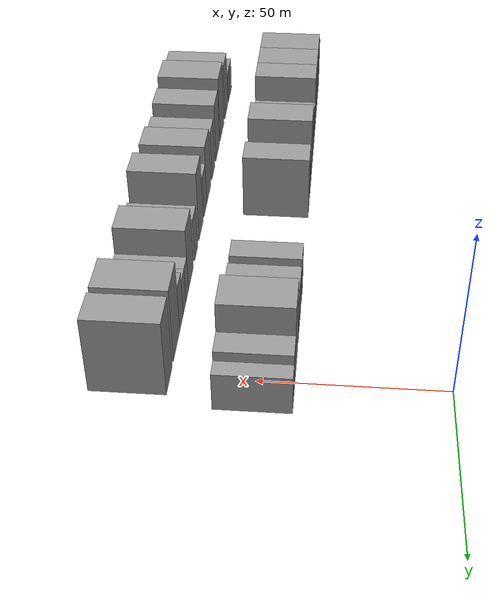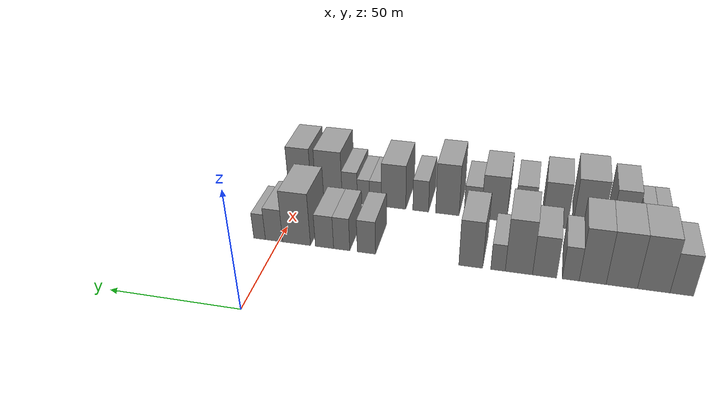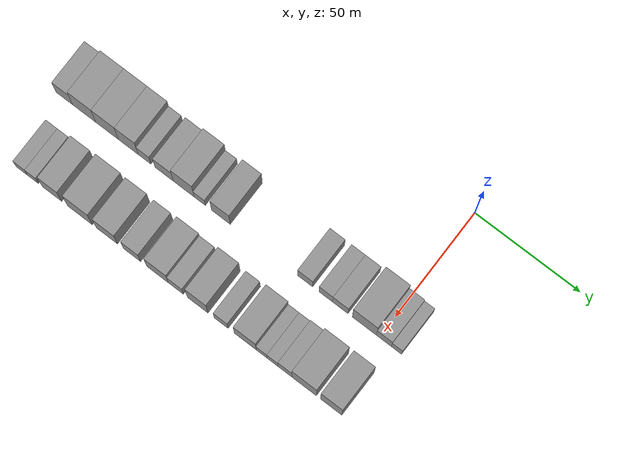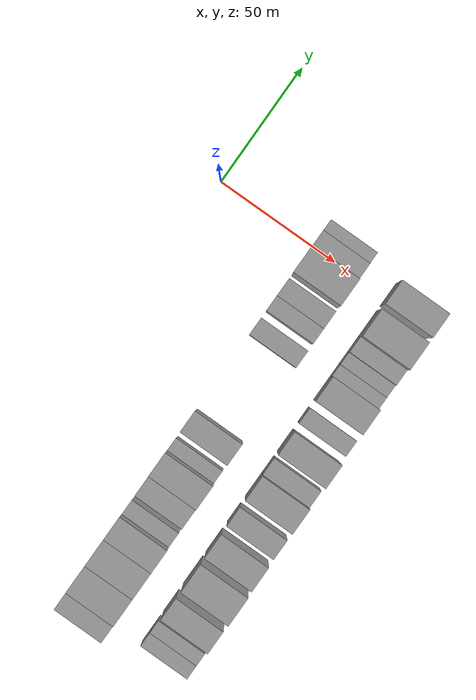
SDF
<sdf version="1.6">
 <world name="default">
  <model name="building_15">
   <static>1</static>
   <pose>50.0000 -151.5765 0 0.000000 0.000000 0.000000</pose>
   <link name="link">
    <pose>0 0 9.00 0 0 0</pose>
    <collision name="collision"><geometry><box><size>20.0000 8.1117 18.0000</size></box></geometry></collision>
    <visual name="visual">
     <cast_shadows>0</cast_shadows>
     <geometry><box><size>20.0000 8.1117 18.0000</size></box></geometry>
     <material>
      <script>
       <uri>model://grey_wall/materials/scripts</uri>
       <uri>model://grey_wall/materials/textures</uri>
       <name>vrc/grey_wall</name>
      </script>
     </material>
    </visual>
   </link>
  </model>
  <model name="building_16">
   <static>1</static>
   <pose>50.0000 -141.8752 0 0.000000 0.000000 0.000000</pose>
   <link name="link">
    <pose>0 0 12.00 0 0 0</pose>
    <collision name="collision"><geometry><box><size>20.0000 11.2909 24.0000</size></box></geometry></collision>
    <visual name="visual">
     <cast_shadows>0</cast_shadows>
     <geometry><box><size>20.0000 11.2909 24.0000</size></box></geometry>
     <material>
      <script>
       <uri>model://grey_wall/materials/scripts</uri>
       <uri>model://grey_wall/materials/textures</uri>
       <name>vrc/grey_wall</name>
      </script>
     </material>
    </visual>
   </link>
  </model>
  <model name="building_17">
   <static>1</static>
   <pose>50.0000 -130.7144 0 0.000000 0.000000 0.000000</pose>
   <link name="link">
    <pose>0 0 12.00 0 0 0</pose>
    <collision name="collision"><geometry><box><size>20.0000 11.0307 24.0000</size></box></geometry></collision>
    <visual name="visual">
     <cast_shadows>0</cast_shadows>
     <geometry><box><size>20.0000 11.0307 24.0000</size></box></geometry>
     <material>
      <script>
       <uri>model://grey_wall/materials/scripts</uri>
       <uri>model://grey_wall/materials/textures</uri>
       <name>vrc/grey_wall</name>
      </script>
     </material>
    </visual>
   </link>
  </model>
  <model name="building_18">
   <static>1</static>
   <pose>50.0000 -120.3880 0 0.000000 0.000000 0.000000</pose>
   <link name="link">
    <pose>0 0 12.00 0 0 0</pose>
    <collision name="collision"><geometry><box><size>20.0000 9.6219 24.0000</size></box></geometry></collision>
    <visual name="visual">
     <cast_shadows>0</cast_shadows>
     <geometry><box><size>20.0000 9.6219 24.0000</size></box></geometry>
     <material>
      <script>
       <uri>model://grey_wall/materials/scripts</uri>
       <uri>model://grey_wall/materials/textures</uri>
       <name>vrc/grey_wall</name>
      </script>
     </material>
    </visual>
   </link>
  </model>
  <model name="building_19">
   <static>1</static>
   <pose>50.0000 -112.5181 0 0.000000 0.000000 0.000000</pose>
   <link name="link">
    <pose>0 0 7.50 0 0 0</pose>
    <collision name="collision"><geometry><box><size>20.0000 6.1178 15.0000</size></box></geometry></collision>
    <visual name="visual">
     <cast_shadows>0</cast_shadows>
     <geometry><box><size>20.0000 6.1178 15.0000</size></box></geometry>
     <material>
      <script>
       <uri>model://grey_wall/materials/scripts</uri>
       <uri>model://grey_wall/materials/textures</uri>
       <name>vrc/grey_wall</name>
      </script>
     </material>
    </visual>
   </link>
  </model>
  <model name="building_20">
   <static>1</static>
   <pose>50.0000 -103.0494 0 0.000000 0.000000 0.000000</pose>
   <link name="link">
    <pose>0 0 9.00 0 0 0</pose>
    <collision name="collision"><geometry><box><size>20.0000 8.8197 18.0000</size></box></geometry></collision>
    <visual name="visual">
     <cast_shadows>0</cast_shadows>
     <geometry><box><size>20.0000 8.8197 18.0000</size></box></geometry>
     <material>
      <script>
       <uri>model://grey_wall/materials/scripts</uri>
       <uri>model://grey_wall/materials/textures</uri>
       <name>vrc/grey_wall</name>
      </script>
     </material>
    </visual>
   </link>
  </model>
  <model name="building_21">
   <static>1</static>
   <pose>50.0000 -93.6185 0 0.000000 0.000000 0.000000</pose>
   <link name="link">
    <pose>0 0 12.00 0 0 0</pose>
    <collision name="collision"><geometry><box><size>20.0000 10.0421 24.0000</size></box></geometry></collision>
    <visual name="visual">
     <cast_shadows>0</cast_shadows>
     <geometry><box><size>20.0000 10.0421 24.0000</size></box></geometry>
     <material>
      <script>
       <uri>model://grey_wall/materials/scripts</uri>
       <uri>model://grey_wall/materials/textures</uri>
       <name>vrc/grey_wall</name>
      </script>
     </material>
    </visual>
   </link>
  </model>
  <model name="building_22">
   <static>1</static>
   <pose>50.0000 -85.8899 0 0.000000 0.000000 0.000000</pose>
   <link name="link">
    <pose>0 0 6.00 0 0 0</pose>
    <collision name="collision"><geometry><box><size>20.0000 5.4150 12.0000</size></box></geometry></collision>
    <visual name="visual">
     <cast_shadows>0</cast_shadows>
     <geometry><box><size>20.0000 5.4150 12.0000</size></box></geometry>
     <material>
      <script>
       <uri>model://grey_wall/materials/scripts</uri>
       <uri>model://grey_wall/materials/textures</uri>
       <name>vrc/grey_wall</name>
      </script>
     </material>
    </visual>
   </link>
  </model>
  <model name="building_23">
   <static>1</static>
   <pose>50.0000 -75.6865 0 0.000000 0.000000 0.000000</pose>
   <link name="link">
    <pose>0 0 10.50 0 0 0</pose>
    <collision name="collision"><geometry><box><size>20.0000 8.9918 21.0000</size></box></geometry></collision>
    <visual name="visual">
     <cast_shadows>0</cast_shadows>
     <geometry><box><size>20.0000 8.9918 21.0000</size></box></geometry>
     <material>
      <script>
       <uri>model://grey_wall/materials/scripts</uri>
       <uri>model://grey_wall/materials/textures</uri>
       <name>vrc/grey_wall</name>
      </script>
     </material>
    </visual>
   </link>
  </model>
  <model name="building_24">
   <static>1</static>
   <pose>50.0000 -35.3655 0 0.000000 0.000000 0.000000</pose>
   <link name="link">
    <pose>0 0 7.50 0 0 0</pose>
    <collision name="collision"><geometry><box><size>20.0000 7.2167 15.0000</size></box></geometry></collision>
    <visual name="visual">
     <cast_shadows>0</cast_shadows>
     <geometry><box><size>20.0000 7.2167 15.0000</size></box></geometry>
     <material>
      <script>
       <uri>model://grey_wall/materials/scripts</uri>
       <uri>model://grey_wall/materials/textures</uri>
       <name>vrc/grey_wall</name>
      </script>
     </material>
    </visual>
   </link>
  </model>
  <model name="building_25">
   <static>1</static>
   <pose>50.0000 -25.5118 0 0.000000 0.000000 0.000000</pose>
   <link name="link">
    <pose>0 0 7.50 0 0 0</pose>
    <collision name="collision"><geometry><box><size>20.0000 6.4908 15.0000</size></box></geometry></collision>
    <visual name="visual">
     <cast_shadows>0</cast_shadows>
     <geometry><box><size>20.0000 6.4908 15.0000</size></box></geometry>
     <material>
      <script>
       <uri>model://grey_wall/materials/scripts</uri>
       <uri>model://grey_wall/materials/textures</uri>
       <name>vrc/grey_wall</name>
      </script>
     </material>
    </visual>
   </link>
  </model>
  <model name="building_26">
   <static>1</static>
   <pose>50.0000 -18.5920 0 0.000000 0.000000 0.000000</pose>
   <link name="link">
    <pose>0 0 7.50 0 0 0</pose>
    <collision name="collision"><geometry><box><size>20.0000 7.3487 15.0000</size></box></geometry></collision>
    <visual name="visual">
     <cast_shadows>0</cast_shadows>
     <geometry><box><size>20.0000 7.3487 15.0000</size></box></geometry>
     <material>
      <script>
       <uri>model://grey_wall/materials/scripts</uri>
       <uri>model://grey_wall/materials/textures</uri>
       <name>vrc/grey_wall</name>
      </script>
     </material>
    </visual>
   </link>
  </model>
  <model name="building_27">
   <static>1</static>
   <pose>50.0000 -7.2226 0 0.000000 0.000000 0.000000</pose>
   <link name="link">
    <pose>0 0 12.00 0 0 0</pose>
    <collision name="collision"><geometry><box><size>20.0000 11.3902 24.0000</size></box></geometry></collision>
    <visual name="visual">
     <cast_shadows>0</cast_shadows>
     <geometry><box><size>20.0000 11.3902 24.0000</size></box></geometry>
     <material>
      <script>
       <uri>model://grey_wall/materials/scripts</uri>
       <uri>model://grey_wall/materials/textures</uri>
       <name>vrc/grey_wall</name>
      </script>
     </material>
    </visual>
   </link>
  </model>
  <model name="building_28">
   <static>1</static>
   <pose>50.0000 2.0500 0 0.000000 0.000000 0.000000</pose>
   <link name="link">
    <pose>0 0 7.50 0 0 0</pose>
    <collision name="collision"><geometry><box><size>20.0000 7.1551 15.0000</size></box></geometry></collision>
    <visual name="visual">
     <cast_shadows>0</cast_shadows>
     <geometry><box><size>20.0000 7.1551 15.0000</size></box></geometry>
     <material>
      <script>
       <uri>model://grey_wall/materials/scripts</uri>
       <uri>model://grey_wall/materials/textures</uri>
       <name>vrc/grey_wall</name>
      </script>
     </material>
    </visual>
   </link>
  </model>
  <model name="building_29">
   <static>1</static>
   <pose>50.0000 8.0518 0 0.000000 0.000000 0.000000</pose>
   <link name="link">
    <pose>0 0 6.00 0 0 0</pose>
    <collision name="collision"><geometry><box><size>20.0000 4.8486 12.0000</size></box></geometry></collision>
    <visual name="visual">
     <cast_shadows>0</cast_shadows>
     <geometry><box><size>20.0000 4.8486 12.0000</size></box></geometry>
     <material>
      <script>
       <uri>model://grey_wall/materials/scripts</uri>
       <uri>model://grey_wall/materials/textures</uri>
       <name>vrc/grey_wall</name>
      </script>
     </material>
    </visual>
   </link>
  </model>
  <model name="building_77">
   <static>1</static>
   <pose>82.0000 -146.9586 0 0.000000 0.000000 0.000000</pose>
   <link name="link">
    <pose>0 0 6.00 0 0 0</pose>
    <collision name="collision"><geometry><box><size>20.0000 5.6003 12.0000</size></box></geometry></collision>
    <visual name="visual">
     <cast_shadows>0</cast_shadows>
     <geometry><box><size>20.0000 5.6003 12.0000</size></box></geometry>
     <material>
      <script>
       <uri>model://grey_wall/materials/scripts</uri>
       <uri>model://grey_wall/materials/textures</uri>
       <name>vrc/grey_wall</name>
      </script>
     </material>
    </visual>
   </link>
  </model>
  <model name="building_78">
   <static>1</static>
   <pose>82.0000 -141.5234 0 0.000000 0.000000 0.000000</pose>
   <link name="link">
    <pose>0 0 6.00 0 0 0</pose>
    <collision name="collision"><geometry><box><size>20.0000 5.2701 12.0000</size></box></geometry></collision>
    <visual name="visual">
     <cast_shadows>0</cast_shadows>
     <geometry><box><size>20.0000 5.2701 12.0000</size></box></geometry>
     <material>
      <script>
       <uri>model://grey_wall/materials/scripts</uri>
       <uri>model://grey_wall/materials/textures</uri>
       <name>vrc/grey_wall</name>
      </script>
     </material>
    </visual>
   </link>
  </model>
  <model name="building_79">
   <static>1</static>
   <pose>82.0000 -132.2449 0 0.000000 0.000000 0.000000</pose>
   <link name="link">
    <pose>0 0 10.50 0 0 0</pose>
    <collision name="collision"><geometry><box><size>20.0000 9.2868 21.0000</size></box></geometry></collision>
    <visual name="visual">
     <cast_shadows>0</cast_shadows>
     <geometry><box><size>20.0000 9.2868 21.0000</size></box></geometry>
     <material>
      <script>
       <uri>model://grey_wall/materials/scripts</uri>
       <uri>model://grey_wall/materials/textures</uri>
       <name>vrc/grey_wall</name>
      </script>
     </material>
    </visual>
   </link>
  </model>
  <model name="building_80">
   <static>1</static>
   <pose>82.0000 -118.6875 0 0.000000 0.000000 0.000000</pose>
   <link name="link">
    <pose>0 0 12.00 0 0 0</pose>
    <collision name="collision"><geometry><box><size>20.0000 11.8279 24.0000</size></box></geometry></collision>
    <visual name="visual">
     <cast_shadows>0</cast_shadows>
     <geometry><box><size>20.0000 11.8279 24.0000</size></box></geometry>
     <material>
      <script>
       <uri>model://grey_wall/materials/scripts</uri>
       <uri>model://grey_wall/materials/textures</uri>
       <name>vrc/grey_wall</name>
      </script>
     </material>
    </visual>
   </link>
  </model>
  <model name="building_81">
   <static>1</static>
   <pose>82.0000 -105.6995 0 0.000000 0.000000 0.000000</pose>
   <link name="link">
    <pose>0 0 10.50 0 0 0</pose>
    <collision name="collision"><geometry><box><size>20.0000 10.1482 21.0000</size></box></geometry></collision>
    <visual name="visual">
     <cast_shadows>0</cast_shadows>
     <geometry><box><size>20.0000 10.1482 21.0000</size></box></geometry>
     <material>
      <script>
       <uri>model://grey_wall/materials/scripts</uri>
       <uri>model://grey_wall/materials/textures</uri>
       <name>vrc/grey_wall</name>
      </script>
     </material>
    </visual>
   </link>
  </model>
  <model name="building_82">
   <static>1</static>
   <pose>82.0000 -93.5496 0 0.000000 0.000000 0.000000</pose>
   <link name="link">
    <pose>0 0 9.00 0 0 0</pose>
    <collision name="collision"><geometry><box><size>20.0000 8.1516 18.0000</size></box></geometry></collision>
    <visual name="visual">
     <cast_shadows>0</cast_shadows>
     <geometry><box><size>20.0000 8.1516 18.0000</size></box></geometry>
     <material>
      <script>
       <uri>model://grey_wall/materials/scripts</uri>
       <uri>model://grey_wall/materials/textures</uri>
       <name>vrc/grey_wall</name>
      </script>
     </material>
    </visual>
   </link>
  </model>
  <model name="building_83">
   <static>1</static>
   <pose>82.0000 -81.2690 0 0.000000 0.000000 0.000000</pose>
   <link name="link">
    <pose>0 0 10.50 0 0 0</pose>
    <collision name="collision"><geometry><box><size>20.0000 10.4096 21.0000</size></box></geometry></collision>
    <visual name="visual">
     <cast_shadows>0</cast_shadows>
     <geometry><box><size>20.0000 10.4096 21.0000</size></box></geometry>
     <material>
      <script>
       <uri>model://grey_wall/materials/scripts</uri>
       <uri>model://grey_wall/materials/textures</uri>
       <name>vrc/grey_wall</name>
      </script>
     </material>
    </visual>
   </link>
  </model>
  <model name="building_84">
   <static>1</static>
   <pose>82.0000 -72.4953 0 0.000000 0.000000 0.000000</pose>
   <link name="link">
    <pose>0 0 7.50 0 0 0</pose>
    <collision name="collision"><geometry><box><size>20.0000 7.1378 15.0000</size></box></geometry></collision>
    <visual name="visual">
     <cast_shadows>0</cast_shadows>
     <geometry><box><size>20.0000 7.1378 15.0000</size></box></geometry>
     <material>
      <script>
       <uri>model://grey_wall/materials/scripts</uri>
       <uri>model://grey_wall/materials/textures</uri>
       <name>vrc/grey_wall</name>
      </script>
     </material>
    </visual>
   </link>
  </model>
  <model name="building_85">
   <static>1</static>
   <pose>82.0000 -62.0333 0 0.000000 0.000000 0.000000</pose>
   <link name="link">
    <pose>0 0 12.00 0 0 0</pose>
    <collision name="collision"><geometry><box><size>20.0000 9.7862 24.0000</size></box></geometry></collision>
    <visual name="visual">
     <cast_shadows>0</cast_shadows>
     <geometry><box><size>20.0000 9.7862 24.0000</size></box></geometry>
     <material>
      <script>
       <uri>model://grey_wall/materials/scripts</uri>
       <uri>model://grey_wall/materials/textures</uri>
       <name>vrc/grey_wall</name>
      </script>
     </material>
    </visual>
   </link>
  </model>
  <model name="building_86">
   <static>1</static>
   <pose>82.0000 -50.8289 0 0.000000 0.000000 0.000000</pose>
   <link name="link">
    <pose>0 0 7.50 0 0 0</pose>
    <collision name="collision"><geometry><box><size>20.0000 6.6227 15.0000</size></box></geometry></collision>
    <visual name="visual">
     <cast_shadows>0</cast_shadows>
     <geometry><box><size>20.0000 6.6227 15.0000</size></box></geometry>
     <material>
      <script>
       <uri>model://grey_wall/materials/scripts</uri>
       <uri>model://grey_wall/materials/textures</uri>
       <name>vrc/grey_wall</name>
      </script>
     </material>
    </visual>
   </link>
  </model>
  <model name="building_87">
   <static>1</static>
   <pose>82.0000 -39.3092 0 0.000000 0.000000 0.000000</pose>
   <link name="link">
    <pose>0 0 10.50 0 0 0</pose>
    <collision name="collision"><geometry><box><size>20.0000 10.4166 21.0000</size></box></geometry></collision>
    <visual name="visual">
     <cast_shadows>0</cast_shadows>
     <geometry><box><size>20.0000 10.4166 21.0000</size></box></geometry>
     <material>
      <script>
       <uri>model://grey_wall/materials/scripts</uri>
       <uri>model://grey_wall/materials/textures</uri>
       <name>vrc/grey_wall</name>
      </script>
     </material>
    </visual>
   </link>
  </model>
  <model name="building_88">
   <static>1</static>
   <pose>82.0000 -31.5528 0 0.000000 0.000000 0.000000</pose>
   <link name="link">
    <pose>0 0 6.00 0 0 0</pose>
    <collision name="collision"><geometry><box><size>20.0000 5.0961 12.0000</size></box></geometry></collision>
    <visual name="visual">
     <cast_shadows>0</cast_shadows>
     <geometry><box><size>20.0000 5.0961 12.0000</size></box></geometry>
     <material>
      <script>
       <uri>model://grey_wall/materials/scripts</uri>
       <uri>model://grey_wall/materials/textures</uri>
       <name>vrc/grey_wall</name>
      </script>
     </material>
    </visual>
   </link>
  </model>
  <model name="building_89">
   <static>1</static>
   <pose>82.0000 -26.3677 0 0.000000 0.000000 0.000000</pose>
   <link name="link">
    <pose>0 0 6.00 0 0 0</pose>
    <collision name="collision"><geometry><box><size>20.0000 5.2742 12.0000</size></box></geometry></collision>
    <visual name="visual">
     <cast_shadows>0</cast_shadows>
     <geometry><box><size>20.0000 5.2742 12.0000</size></box></geometry>
     <material>
      <script>
       <uri>model://grey_wall/materials/scripts</uri>
       <uri>model://grey_wall/materials/textures</uri>
       <name>vrc/grey_wall</name>
      </script>
     </material>
    </visual>
   </link>
  </model>
  <model name="building_90">
   <static>1</static>
   <pose>82.0000 -20.4070 0 0.000000 0.000000 0.000000</pose>
   <link name="link">
    <pose>0 0 7.50 0 0 0</pose>
    <collision name="collision"><geometry><box><size>20.0000 6.6472 15.0000</size></box></geometry></collision>
    <visual name="visual">
     <cast_shadows>0</cast_shadows>
     <geometry><box><size>20.0000 6.6472 15.0000</size></box></geometry>
     <material>
      <script>
       <uri>model://grey_wall/materials/scripts</uri>
       <uri>model://grey_wall/materials/textures</uri>
       <name>vrc/grey_wall</name>
      </script>
     </material>
    </visual>
   </link>
  </model>
  <model name="building_91">
   <static>1</static>
   <pose>82.0000 -11.3165 0 0.000000 0.000000 0.000000</pose>
   <link name="link">
    <pose>0 0 12.00 0 0 0</pose>
    <collision name="collision"><geometry><box><size>20.0000 11.5337 24.0000</size></box></geometry></collision>
    <visual name="visual">
     <cast_shadows>0</cast_shadows>
     <geometry><box><size>20.0000 11.5337 24.0000</size></box></geometry>
     <material>
      <script>
       <uri>model://grey_wall/materials/scripts</uri>
       <uri>model://grey_wall/materials/textures</uri>
       <name>vrc/grey_wall</name>
      </script>
     </material>
    </visual>
   </link>
  </model>
  <model name="building_92">
   <static>1</static>
   <pose>82.0000 1.4803 0 0.000000 0.000000 0.000000</pose>
   <link name="link">
    <pose>0 0 12.00 0 0 0</pose>
    <collision name="collision"><geometry><box><size>20.0000 10.0600 24.0000</size></box></geometry></collision>
    <visual name="visual">
     <cast_shadows>0</cast_shadows>
     <geometry><box><size>20.0000 10.0600 24.0000</size></box></geometry>
     <material>
      <script>
       <uri>model://grey_wall/materials/scripts</uri>
       <uri>model://grey_wall/materials/textures</uri>
       <name>vrc/grey_wall</name>
      </script>
     </material>
    </visual>
   </link>
  </model>
 </world>
</sdf>
